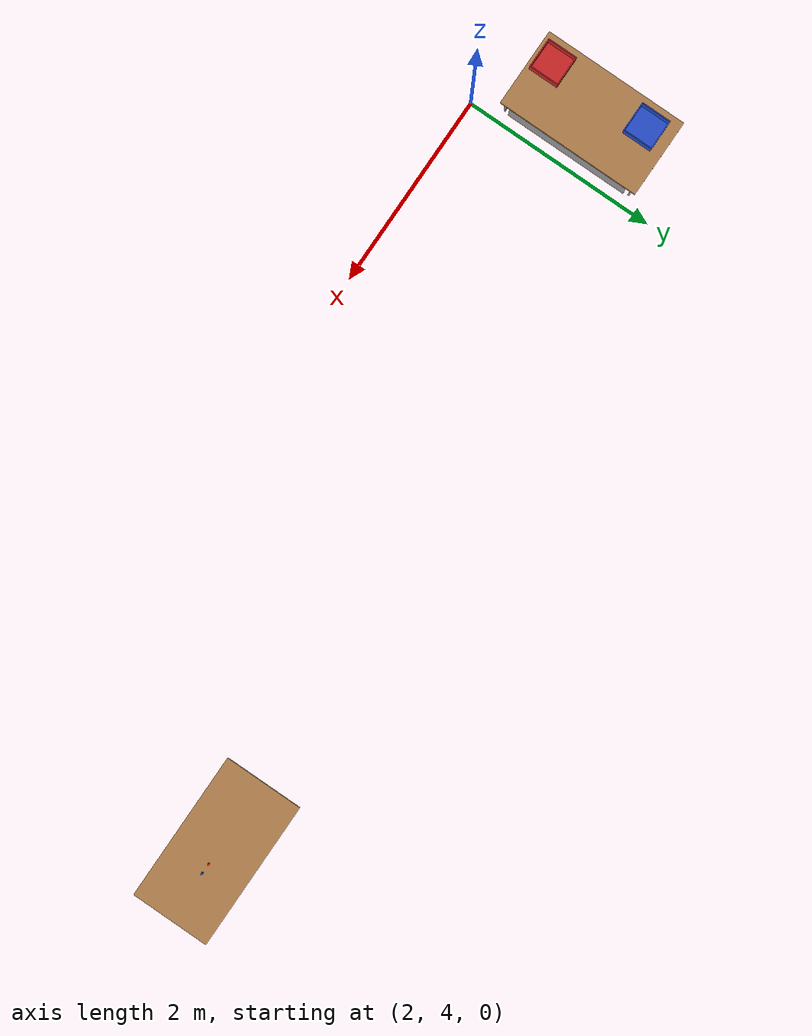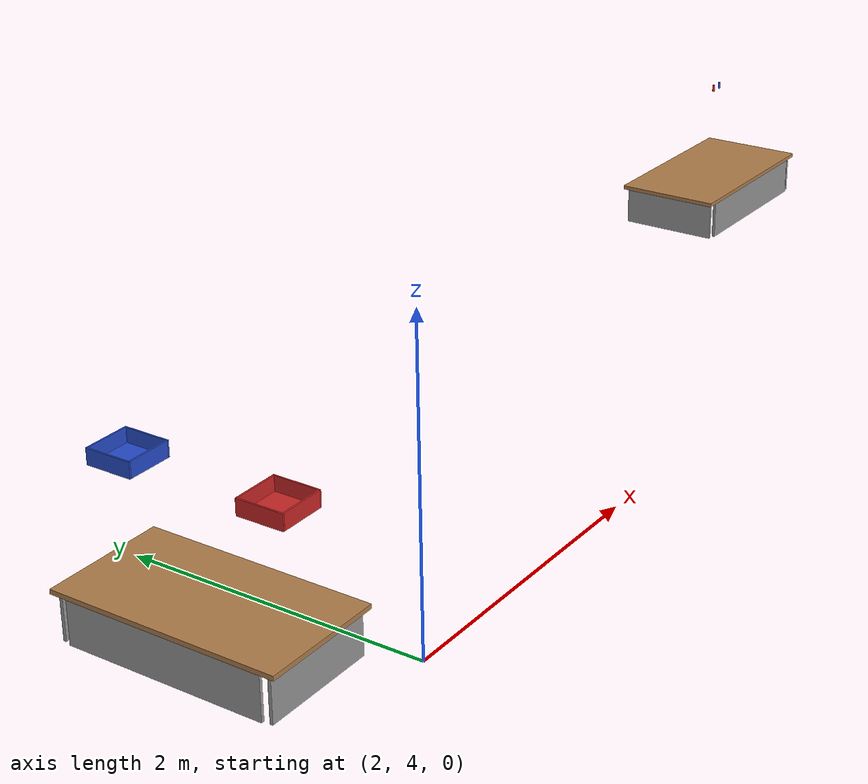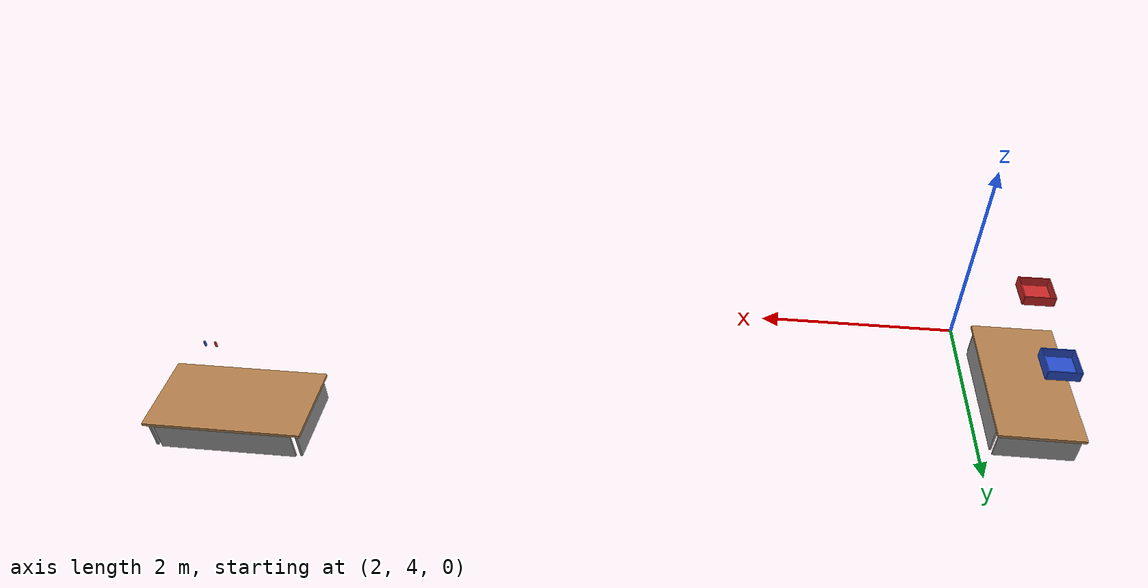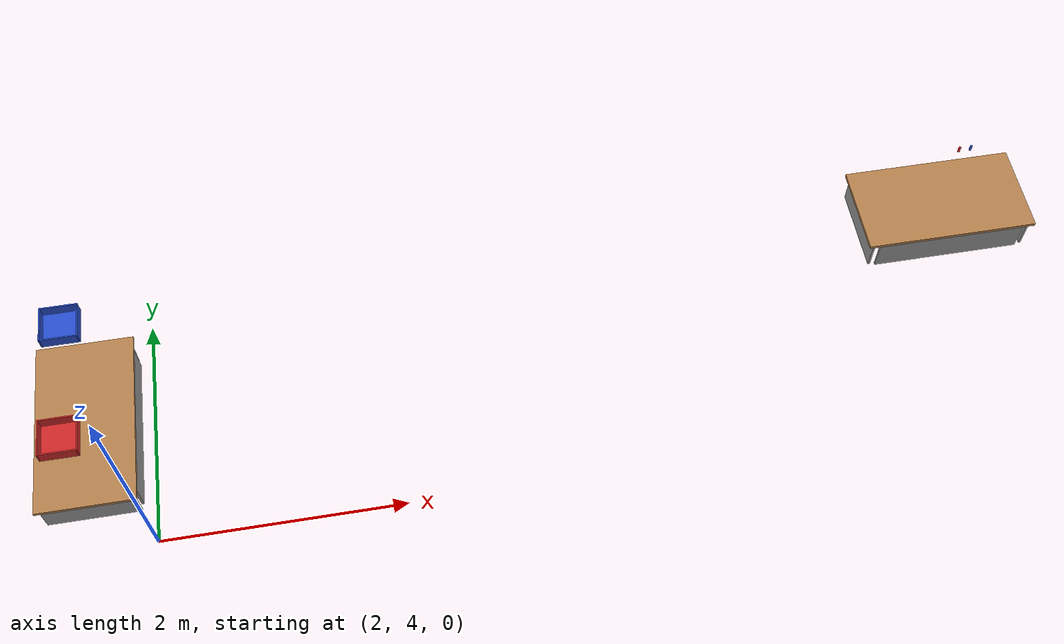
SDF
<sdf version="1.6">
 <world name="factory">
  <light name="sun" type="directional">
   <pose>0 0 10 0 -0 0</pose>
   <diffuse>0.8 0.8 0.8 1</diffuse>
   <specular>0.2 0.2 0.2 1</specular>
   <attenuation>
    <range>1000</range>
    <constant>0.9</constant>
    <linear>0.01</linear>
    <quadratic>0.001</quadratic>
   </attenuation>
   <direction>-0.5 0.1 -0.9</direction>
  </light>
  <gravity>0 0 -9.8</gravity>
  <magnetic_field>6e-06 2.3e-05 -4.2e-05</magnetic_field>
  <atmosphere type="adiabatic"/>
  <physics name="default_physics" default="0" type="ode">
   <max_step_size>0.001</max_step_size>
   <real_time_factor>1</real_time_factor>
   <real_time_update_rate>1000</real_time_update_rate>
  </physics>
  <scene><ambient>0.4 0.4 0.4 1</ambient><background>0.7 0.7 0.7 1</background><shadows>1</shadows></scene>
  <spherical_coordinates>
   <surface_model>EARTH_WGS84</surface_model>
   <latitude_deg>0</latitude_deg>
   <longitude_deg>0</longitude_deg>
   <elevation>0</elevation>
   <heading_deg>0</heading_deg>
  </spherical_coordinates>
  <model name="table">
   <static>1</static>
   <link name="table_link">
    <collision name="table_surface">
     <pose>0 0 0.3 0 -0 0</pose>
     <geometry><box><size>1.5 0.8 0.03</size></box></geometry>
     <surface><friction><ode><mu>0.6</mu><mu2>0.6</mu2></ode></friction></surface>
    </collision>
    <visual name="table_visual">
     <pose>0 0 0.3 0 -0 0</pose>
     <geometry><box><size>1.5 0.8 0.03</size></box></geometry>
     <material>
      <script><uri>file://media/materials/scripts/gazebo.material</uri><name>Gazebo/Wood</name></script>
     </material>
    </visual>
    <collision name="table_front_left_leg">
     <pose>0 0.38 0.15 0 -0 0</pose>
     <geometry><box><size>1.3 0.02 0.3</size></box></geometry>
    </collision>
    <visual name="table_front_left_leg">
     <pose>0 0.38 0.15 0 -0 0</pose>
     <geometry><box><size>1.3 0.02 0.3</size></box></geometry>
     <material>
      <script><uri>file://media/materials/scripts/gazebo.material</uri><name>Gazebo/Grey</name></script>
     </material>
    </visual>
    <collision name="table_front_right_leg">
     <pose>0.70 0 0.15 0 -0 0</pose>
     <geometry><box><size>0.02 0.75 0.3</size></box></geometry>
    </collision>
    <visual name="table_front_right_leg">
     <pose>0.70 0 0.15 0 -0 0</pose>
     <geometry><box><size>0.02 0.75 0.3</size></box></geometry>
     <material>
      <script><uri>file://media/materials/scripts/gazebo.material</uri><name>Gazebo/Grey</name></script>
     </material>
    </visual>
    <collision name="table_back_right_leg">
     <pose>-0.70 0 0.15 0 -0 0</pose>
     <geometry><box><size>0.02 0.75 0.3</size></box></geometry>
    </collision>
    <visual name="table_back_right_leg">
     <pose>-0.70 0 0.15 0 -0 0</pose>
     <geometry><box><size>0.02 0.75 0.3</size></box></geometry>
     <material>
      <script><uri>file://media/materials/scripts/gazebo.material</uri><name>Gazebo/Grey</name></script>
     </material>
    </visual>
    <collision name="table_back_left_leg">
     <pose>0 -0.38 0.15 0 -0 0</pose>
     <geometry><box><size>1.3 0.02 0.3</size></box></geometry>
    </collision>
    <visual name="table_back_left_leg">
     <pose>0 -0.38 0.15 0 -0 0</pose>
     <geometry><box><size>1.3 0.02 0.3</size></box></geometry>
     <material>
      <script><uri>file://media/materials/scripts/gazebo.material</uri><name>Gazebo/Grey</name></script>
     </material>
    </visual>
   </link>
   <pose>9 6 0 0 0 0</pose>
  </model>
  <model name="table_clone">
   <static>1</static>
   <link name="table_clone_link">
    <collision name="table_clone_surface">
     <pose>0 0 0.3 0 -0 0</pose>
     <geometry><box><size>1.5 0.8 0.03</size></box></geometry>
     <surface><friction><ode><mu>0.6</mu><mu2>0.6</mu2></ode></friction></surface>
    </collision>
    <visual name="table_clone_visual">
     <pose>0 0 0.3 0 -0 0</pose>
     <geometry><box><size>1.5 0.8 0.03</size></box></geometry>
     <material>
      <script><uri>file://media/materials/scripts/gazebo.material</uri><name>Gazebo/Wood</name></script>
     </material>
    </visual>
    <collision name="table_clone_front_left_leg">
     <pose>0 0.38 0.15 0 -0 0</pose>
     <geometry><box><size>1.3 0.02 0.3</size></box></geometry>
    </collision>
    <visual name="table_clone_front_left_leg">
     <pose>0 0.38 0.15 0 -0 0</pose>
     <geometry><box><size>1.3 0.02 0.3</size></box></geometry>
     <material>
      <script><uri>file://media/materials/scripts/gazebo.material</uri><name>Gazebo/Grey</name></script>
     </material>
    </visual>
    <collision name="table_clone_front_right_leg">
     <pose>0.70 0 0.15 0 -0 0</pose>
     <geometry><box><size>0.02 0.75 0.3</size></box></geometry>
    </collision>
    <visual name="table_clone_front_right_leg">
     <pose>0.70 0 0.15 0 -0 0</pose>
     <geometry><box><size>0.02 0.75 0.3</size></box></geometry>
     <material>
      <script><uri>file://media/materials/scripts/gazebo.material</uri><name>Gazebo/Grey</name></script>
     </material>
    </visual>
    <collision name="table_clone_back_right_leg">
     <pose>-0.70 0 0.15 0 -0 0</pose>
     <geometry><box><size>0.02 0.75 0.3</size></box></geometry>
    </collision>
    <visual name="table_clone_back_right_leg">
     <pose>-0.70 0 0.15 0 -0 0</pose>
     <geometry><box><size>0.02 0.75 0.3</size></box></geometry>
     <material>
      <script><uri>file://media/materials/scripts/gazebo.material</uri><name>Gazebo/Grey</name></script>
     </material>
    </visual>
    <collision name="table_clone_back_left_leg">
     <pose>0 -0.38 0.15 0 -0 0</pose>
     <geometry><box><size>1.3 0.02 0.3</size></box></geometry>
    </collision>
    <visual name="table_clone_back_left_leg">
     <pose>0 -0.38 0.15 0 -0 0</pose>
     <geometry><box><size>1.3 0.02 0.3</size></box></geometry>
     <material>
      <script><uri>file://media/materials/scripts/gazebo.material</uri><name>Gazebo/Grey</name></script>
     </material>
    </visual>
   </link>
   <pose>1.5 5 0 0 0 1.5708</pose>
  </model>
  <model name="red_box">
   <pose>1.5 4.5 1.015 0 0 0</pose>
   <link name="red_box_link">
    <collision name="red_box_bottom">
     <pose>0 0 -0.045 0 0 0</pose>
     <geometry><box><size>0.28 0.28 0.01</size></box></geometry>
    </collision>
    <visual name="red_box_visual_bottom">
     <pose>0 0 -0.045 0 0 0</pose>
     <geometry><box><size>0.28 0.28 0.01</size></box></geometry>
     <material>
      <script><uri>file://media/materials/scripts/gazebo.material</uri><name>Gazebo/Red</name></script>
     </material>
    </visual>
    <collision name="red_box_left">
     <pose>-0.145 0 0 0 0 0</pose>
     <geometry><box><size>0.01 0.3 0.1</size></box></geometry>
    </collision>
    <visual name="red_box_visual_left">
     <pose>-0.145 0 0 0 0 0</pose>
     <geometry><box><size>0.01 0.3 0.1</size></box></geometry>
     <material>
      <script><uri>file://media/materials/scripts/gazebo.material</uri><name>Gazebo/Red</name></script>
     </material>
    </visual>
    <collision name="red_box_right">
     <geometry><box><size>0.01 0.3 0.1</size></box></geometry>
     <pose>0.145 0 0 0 0 0</pose>
    </collision>
    <visual name="red_box_visual_right">
     <geometry><box><size>0.01 0.3 0.1</size></box></geometry>
     <pose>0.145 0 0 0 0 0</pose>
     <material>
      <script><uri>file://media/materials/scripts/gazebo.material</uri><name>Gazebo/Red</name></script>
     </material>
    </visual>
    <collision name="red_box_front">
     <geometry><box><size>0.28 0.01 0.1</size></box></geometry>
     <pose>0 0.145 0 0 0 0</pose>
    </collision>
    <visual name="red_box_visual_front">
     <geometry><box><size>0.28 0.01 0.1</size></box></geometry>
     <pose>0 0.145 0 0 0 0</pose>
     <material>
      <script><uri>file://media/materials/scripts/gazebo.material</uri><name>Gazebo/Red</name></script>
     </material>
    </visual>
    <collision name="red_box_back">
     <geometry><box><size>0.28 0.01 0.1</size></box></geometry>
     <pose>0 -0.145 0 0 0 0</pose>
    </collision>
    <visual name="red_box_visual_back">
     <geometry><box><size>0.28 0.01 0.1</size></box></geometry>
     <pose>0 -0.145 0 0 0 0</pose>
     <material>
      <script><uri>file://media/materials/scripts/gazebo.material</uri><name>Gazebo/Red</name></script>
     </material>
    </visual>
   </link>
  </model>
  <model name="blue_box">
   <pose>1.5 5.5 1.015 0 0 0</pose>
   <link name="blue_box_link">
    <collision name="blue_box_bottom">
     <pose>0 0 -0.045 0 0 0</pose>
     <geometry><box><size>0.28 0.28 0.01</size></box></geometry>
    </collision>
    <visual name="blue_box_visual_bottom">
     <pose>0 0 -0.045 0 0 0</pose>
     <geometry><box><size>0.28 0.28 0.01</size></box></geometry>
     <material>
      <script><uri>file://media/materials/scripts/gazebo.material</uri><name>Gazebo/Blue</name></script>
     </material>
    </visual>
    <collision name="blue_box_left">
     <pose>-0.145 0 0 0 0 0</pose>
     <geometry><box><size>0.01 0.3 0.1</size></box></geometry>
    </collision>
    <visual name="blue_box_visual_left">
     <pose>-0.145 0 0 0 0 0</pose>
     <geometry><box><size>0.01 0.3 0.1</size></box></geometry>
     <material>
      <script><uri>file://media/materials/scripts/gazebo.material</uri><name>Gazebo/Blue</name></script>
     </material>
    </visual>
    <collision name="blue_box_right">
     <geometry><box><size>0.01 0.3 0.1</size></box></geometry>
     <pose>0.145 0 0 0 0 0</pose>
    </collision>
    <visual name="blue_box_visual_right">
     <geometry><box><size>0.01 0.3 0.1</size></box></geometry>
     <pose>0.145 0 0 0 0 0</pose>
     <material>
      <script><uri>file://media/materials/scripts/gazebo.material</uri><name>Gazebo/Blue</name></script>
     </material>
    </visual>
    <collision name="blue_box_front">
     <geometry><box><size>0.28 0.01 0.1</size></box></geometry>
     <pose>0 0.145 0 0 0 0</pose>
    </collision>
    <visual name="blue_box_visual_front">
     <geometry><box><size>0.28 0.01 0.1</size></box></geometry>
     <pose>0 0.145 0 0 0 0</pose>
     <material>
      <script><uri>file://media/materials/scripts/gazebo.material</uri><name>Gazebo/Blue</name></script>
     </material>
    </visual>
    <collision name="blue_box_back">
     <geometry><box><size>0.28 0.01 0.1</size></box></geometry>
     <pose>0 -0.145 0 0 0 0</pose>
    </collision>
    <visual name="blue_box_visual_back">
     <geometry><box><size>0.28 0.01 0.1</size></box></geometry>
     <pose>0 -0.145 0 0 0 0</pose>
     <material>
      <script><uri>file://media/materials/scripts/gazebo.material</uri><name>Gazebo/Blue</name></script>
     </material>
    </visual>
   </link>
  </model>
  <model name="grub_object_1">
   <pose>9 6 1.015 0 0 0</pose>
   <link name="grub_object_1_link">
    <inertial>
     <mass>0.1</mass>
     <inertia>
      <ixx>0.00002333</ixx>
      <iyy>0.00002333</iyy>
      <izz>0.000005</izz>
      <ixy>0</ixy>
      <ixz>0</ixz>
      <iyz>0</iyz>
     </inertia>
    </inertial>
    <collision name="grub_object_1_collision">
     <geometry><cylinder><radius>0.01</radius><length>0.05</length></cylinder></geometry>
    </collision>
    <visual name="grub_object_1_visual">
     <geometry><cylinder><radius>0.01</radius><length>0.05</length></cylinder></geometry>
     <material>
      <script><uri>file://media/materials/scripts/gazebo.material</uri><name>Gazebo/Red</name></script>
     </material>
    </visual>
   </link>
  </model>
  <model name="grub_object_2">
   <pose>9.1 6 1.015 0 0 0</pose>
   <link name="grub_object_2_link">
    <inertial>
     <mass>0.1</mass>
     <inertia>
      <ixx>0.00002333</ixx>
      <iyy>0.00002333</iyy>
      <izz>0.000005</izz>
      <ixy>0</ixy>
      <ixz>0</ixz>
      <iyz>0</iyz>
     </inertia>
    </inertial>
    <collision name="grub_object_2_collision">
     <geometry><cylinder><radius>0.01</radius><length>0.05</length></cylinder></geometry>
    </collision>
    <visual name="grub_object_2_visual">
     <geometry><cylinder><radius>0.01</radius><length>0.05</length></cylinder></geometry>
     <material>
      <script><uri>file://media/materials/scripts/gazebo.material</uri><name>Gazebo/Blue</name></script>
     </material>
    </visual>
   </link>
  </model>
  <model name="invisible_wall_1">
   <pose>1 4.5 1 0 0 1.5708</pose>
   <static>true</static>
   <link name="invisible_wall_1_link">
    <collision name="invisible_wall_1_collision"><geometry><box><size>4 0.1 2</size></box></geometry></collision>
    <visual name="invisible_wall_1_visual">
     <geometry><box><size>4 0.1 2</size></box></geometry>
     <transparency>1.0</transparency>
    </visual>
   </link>
  </model>
  <model name="invisible_wall_2">
   <pose>5.45 6.55 1 0 0 0</pose>
   <static>true</static>
   <link name="invisible_wall_2_link">
    <collision name="invisible_wall_2_collision"><geometry><box><size>9 0.1 2</size></box></geometry></collision>
    <visual name="invisible_wall_2_visual">
     <geometry><box><size>9 0.1 2</size></box></geometry>
     <transparency>1.0</transparency>
    </visual>
   </link>
  </model>
  <model name="invisible_wall_3">
   <pose>2.45 2.45 1 0 0 0</pose>
   <static>true</static>
   <link name="invisible_wall_3_link">
    <collision name="invisible_wall_3_collision"><geometry><box><size>3 0.1 2</size></box></geometry></collision>
    <visual name="invisible_wall_3_visual">
     <geometry><box><size>3 0.1 2</size></box></geometry>
     <transparency>1.0</transparency>
    </visual>
   </link>
  </model>
  <model name="invisible_wall_4">
   <pose>4 2.8 1 0 0 1.5708</pose>
   <static>true</static>
   <link name="invisible_wall_4_link">
    <collision name="invisible_wall_4_collision">
     <geometry><box><size>0.8 0.1 2</size></box></geometry>
    </collision>
    <visual name="invisible_wall_4_visual">
     <geometry><box><size>0.8 0.1 2</size></box></geometry>
     <transparency>1.0</transparency>
    </visual>
   </link>
  </model>
  <model name="invisible_wall_5">
   <pose>6.95 3.25 1 0 0 0</pose>
   <static>true</static>
   <link name="invisible_wall_5_link">
    <collision name="invisible_wall_5_collision"><geometry><box><size>6 0.1 2</size></box></geometry></collision>
    <visual name="invisible_wall_5_visual">
     <geometry><box><size>6 0.1 2</size></box></geometry>
     <transparency>1.0</transparency>
    </visual>
   </link>
  </model>
  <model name="invisible_wall_6">
   <pose>9.9 4.9 1 0 0 1.5708</pose>
   <static>true</static>
   <link name="invisible_wall_6_link">
    <collision name="invisible_wall_6_collision">
     <geometry><box><size>3.2 0.1 2</size></box></geometry>
    </collision>
    <visual name="invisible_wall_5_visual">
     <geometry><box><size>3.2 0.1 2</size></box></geometry>
     <transparency>1.0</transparency>
    </visual>
   </link>
  </model>
  <light name="user_spot_light_0_clone_clone" type="spot">
   <pose>-4.22523 -4.87712 7.17268 0 -0 0</pose>
   <diffuse>0.5 0.5 0.5 1</diffuse>
   <specular>0.1 0.1 0.1 1</specular>
   <direction>0 0 -1</direction>
   <attenuation>
    <range>20</range>
    <constant>0.5</constant>
    <linear>0.01</linear>
    <quadratic>0.001</quadratic>
   </attenuation>
   <cast_shadows>0</cast_shadows>
   <spot><inner_angle>0.6</inner_angle><outer_angle>1</outer_angle><falloff>1</falloff></spot>
  </light>
  <light name="user_spot_light_0_clone_clone_clone" type="spot">
   <pose>0.543716 1.56833 7.17268 0 -0 0</pose>
   <diffuse>0.5 0.5 0.5 1</diffuse>
   <specular>0.1 0.1 0.1 1</specular>
   <direction>0 0 -1</direction>
   <attenuation>
    <range>20</range>
    <constant>0.5</constant>
    <linear>0.01</linear>
    <quadratic>0.001</quadratic>
   </attenuation>
   <cast_shadows>0</cast_shadows>
   <spot><inner_angle>0.6</inner_angle><outer_angle>1</outer_angle><falloff>1</falloff></spot>
  </light>
  <light name="user_spot_light_0_clone_clone_clone_clone_clone" type="spot">
   <pose>4.47445 -6.80903 7.17268 0 -0 0</pose>
   <diffuse>0.5 0.5 0.5 1</diffuse>
   <specular>0.1 0.1 0.1 1</specular>
   <direction>0 0 -1</direction>
   <attenuation>
    <range>20</range>
    <constant>0.5</constant>
    <linear>0.01</linear>
    <quadratic>0.001</quadratic>
   </attenuation>
   <cast_shadows>0</cast_shadows>
   <spot><inner_angle>0.6</inner_angle><outer_angle>1</outer_angle><falloff>1</falloff></spot>
  </light>
 </world>
</sdf>
